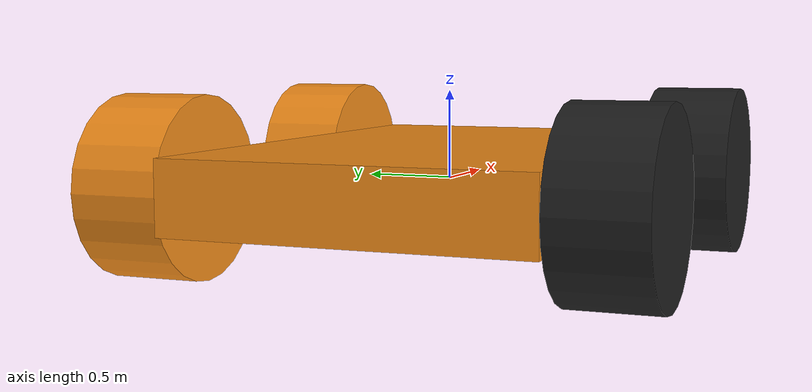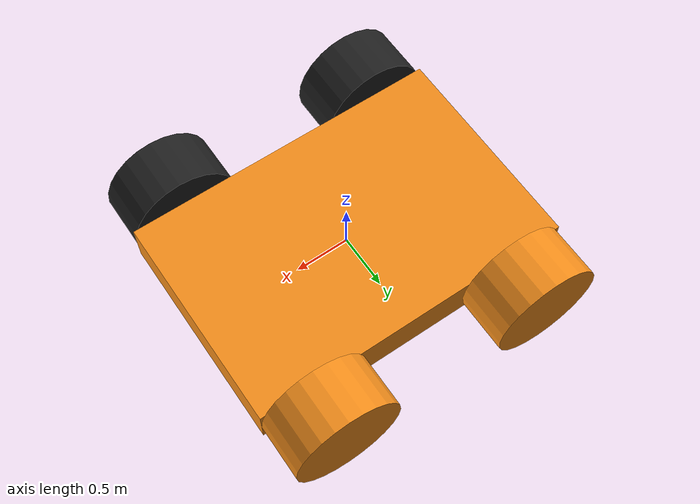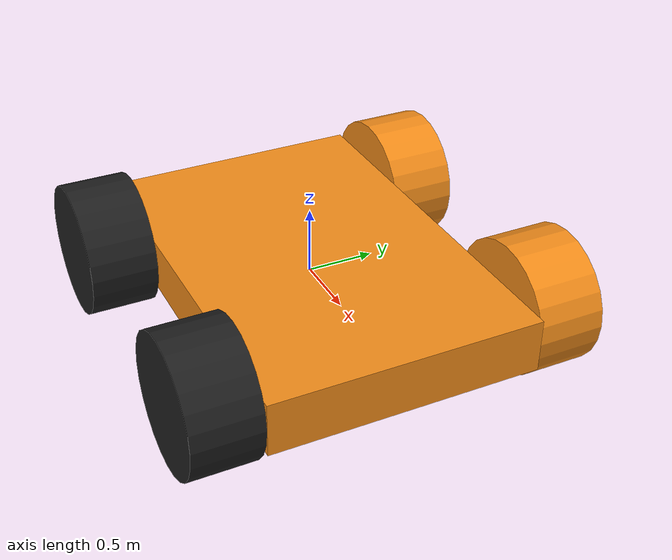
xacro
<?xml version="1.0"?>

<robot name="rover_control_test" xmlns:xacro="http://www.ros.org/wiki/xacro">

  <xacro:property name="PI" value="3.1415926535897931"/>
  <xacro:property name="base_mass" value="10" /> <!-- arbitrary value for mass -->
  <xacro:property name="base_width" value="2" />
  <xacro:property name="height" value="0.4" />
  <xacro:property name="longth" value="3" />
  <xacro:property name="wheel_diameter" value="1" />
  <xacro:property name="wheel_width" value="0.5" />
  <xacro:property name="wheel_mass" value="2" />
  <xacro:include filename="$(find rover_control_test_description)/urdf/rover_control_test.gazebo" />
  <xacro:include filename="$(find rover_control_test_description)/urdf/materials.xacro" />

  <link name="base_link">
   <collision>
     <origin xyz="0 0 0" rpy="0 0 0"/>
     <geometry>
       <box size="${longth} ${base_width} ${height}"/>
     </geometry>
   </collision>
   <visual>
     <origin xyz="0 0 0" rpy="0 0 0"/>
     <geometry>
       <box size="${longth} ${base_width} ${height}"/>
     </geometry>
   </visual>
   <inertial>
     <origin xyz="0 0 ${height/2}" rpy="0 0 0"/>
     <mass value="${base_mass}"/>
     <inertia
	        ixx="${base_mass / 12.0 * (longth*longth + height*height)}" ixy="0.0" ixz="0.0"
	        iyy="${base_mass / 12.0 * (height*height + base_width*base_width)}" iyz="0.0"
	        izz="${base_mass / 12.0 * (longth*longth + base_width*base_width)}"/>
   </inertial>
  </link>

  <link name="front_left_wheel">
   <collision>
     <origin xyz="0 0 0" rpy="${PI/2} 0 0"/>
     <geometry>
       <cylinder radius="${wheel_diameter/2}" length="${wheel_width}"/>
     </geometry>
   </collision>
   <visual>
     <origin xyz="0 0 0" rpy="${PI/2} 0 0"/>
     <geometry>
       <cylinder radius="${wheel_diameter/2}" length="${wheel_width}"/>
     </geometry>
   </visual>
   <inertial>
     <mass value="${base_mass}"/>
     <inertia
         ixx="${(1.0/12)*wheel_mass*(3*wheel_diameter/2*wheel_diameter/2+wheel_width*wheel_width)}" ixy="0.0" ixz="0.0"
         iyy="${(1.0/12)*wheel_mass*(3*wheel_diameter/2*wheel_diameter/2+wheel_width*wheel_width)}" iyz="0.0"
         izz="${(1.0/12)*wheel_mass*(wheel_diameter/2*wheel_diameter/2)}" />
   </inertial>
  </link>

  <joint name="front_left_joint" type="continuous">
    <axis xyz="0 1 0"/>
    <limit effort="100" velocity="100"/>
    <joint_properties damping="0.0" friction="0.0"/>
    <dynamics damping="0.7"/>
    <origin xyz="-1 -1.25 0" rpy="0 0 0"/>
    <parent link="base_link"/>
    <child link="front_left_wheel"/>
  </joint>

  <link name="front_right_wheel">
   <collision>
     <origin xyz="0 0 0" rpy="${PI/2} 0 0"/>
     <geometry>
       <cylinder radius="${wheel_diameter/2}" length="${wheel_width}"/>
     </geometry>
   </collision>
   <visual>
     <origin xyz="0 0 0" rpy="${PI/2} 0 0"/>
     <geometry>
       <cylinder radius="${wheel_diameter/2}" length="${wheel_width}"/>
     </geometry>
   </visual>
   <inertial>
     <mass value="${base_mass}"/>
     <inertia
         ixx="${(1.0/12)*wheel_mass*(3*wheel_diameter/2*wheel_diameter/2+wheel_width*wheel_width)}" ixy="0.0" ixz="0.0"
         iyy="${(1.0/12)*wheel_mass*(3*wheel_diameter/2*wheel_diameter/2+wheel_width*wheel_width)}" iyz="0.0"
         izz="${(1.0/12)*wheel_mass*(wheel_diameter/2*wheel_diameter/2)}" />
   </inertial>
  </link>

  <joint name="front_right_joint" type="continuous">
    <axis xyz="0 1 0"/>
    <limit effort="100" velocity="100"/>
    <joint_properties damping="0.0" friction="0.0"/>
    <dynamics damping="0.7"/>
    <origin xyz="-1 1.25 0" rpy="0 0 0"/>
    <parent link="base_link"/>
    <child link="front_right_wheel"/>
  </joint>

  <link name="rear_left_wheel">
   <collision>
     <origin xyz="0 0 0" rpy="${PI/2} 0 0"/>
     <geometry>
       <cylinder radius="${wheel_diameter/2}" length="${wheel_width}"/>
     </geometry>
   </collision>
   <visual>
     <origin xyz="0 0 0" rpy="${PI/2} 0 0"/>
     <geometry>
       <cylinder radius="${wheel_diameter/2}" length="${wheel_width}"/>
     </geometry>
   </visual>
   <inertial>
     <mass value="${base_mass}"/>
     <inertia
         ixx="${(1.0/12)*wheel_mass*(3*wheel_diameter/2*wheel_diameter/2+wheel_width*wheel_width)}" ixy="0.0" ixz="0.0"
         iyy="${(1.0/12)*wheel_mass*(3*wheel_diameter/2*wheel_diameter/2+wheel_width*wheel_width)}" iyz="0.0"
         izz="${(1.0/12)*wheel_mass*(wheel_diameter/2*wheel_diameter/2)}" />
   </inertial>
  </link>

  <joint name="rear_left_joint" type="continuous">
    <axis xyz="0 1 0"/>
    <limit effort="100" velocity="100"/>
    <joint_properties damping="0.0" friction="0.0"/>
    <dynamics damping="0.7"/>
    <origin xyz="1 -1.25 0" rpy="0 0 0"/>
    <parent link="base_link"/>
    <child link="rear_left_wheel"/>
  </joint>

  <link name="rear_right_wheel">
   <collision>
     <origin xyz="0 0 0" rpy="${PI/2} 0 0"/>
     <geometry>
       <cylinder radius="${wheel_diameter/2}" length="${wheel_width}"/>
     </geometry>
   </collision>
   <visual>
     <origin xyz="0 0 0" rpy="${PI/2} 0 0"/>
     <geometry>
       <cylinder radius="${wheel_diameter/2}" length="${wheel_width}"/>
     </geometry>
   </visual>
   <inertial>
     <mass value="${base_mass}"/>
     <inertia
         ixx="${(1.0/12)*wheel_mass*(3*wheel_diameter/2*wheel_diameter/2+wheel_width*wheel_width)}" ixy="0.0" ixz="0.0"
         iyy="${(1.0/12)*wheel_mass*(3*wheel_diameter/2*wheel_diameter/2+wheel_width*wheel_width)}" iyz="0.0"
         izz="${(1.0/12)*wheel_mass*(wheel_diameter/2*wheel_diameter/2)}" />
   </inertial>
  </link>

  <joint name="rear_right_joint" type="continuous">
    <axis xyz="0 1 0"/>
    <limit effort="100" velocity="100"/>
    <joint_properties damping="0.0" friction="0.0"/>
    <dynamics damping="0.7"/>
    <origin xyz="1 1.25 0" rpy="0 0 0"/>
    <parent link="base_link"/>
    <child link="rear_right_wheel"/>
  </joint>

  <transmission name="tran_front_left_joint">
    <type>transmission_interface/SimpleTransmission</type>
    <joint name="front_left_joint">
      <hardwareInterface>hardware_interface/EffortJointInterface</hardwareInterface>
    </joint>
    <actuator name="motor_front_left_joint">
      <hardwareInterface>hardware_interface/EffortJointInterface</hardwareInterface>
      <mechanicalReduction>1</mechanicalReduction>
    </actuator>
  </transmission>

  <transmission name="tran_front_right">
    <type>transmission_interface/SimpleTransmission</type>
    <joint name="front_right_joint">
      <hardwareInterface>hardware_interface/EffortJointInterface</hardwareInterface>
    </joint>
    <actuator name="motor_front_right">
      <hardwareInterface>hardware_interface/EffortJointInterface</hardwareInterface>
      <mechanicalReduction>1</mechanicalReduction>
    </actuator>
  </transmission>

  <transmission name="tran_rear_left_joint">
    <type>transmission_interface/SimpleTransmission</type>
    <joint name="rear_left_joint">
      <hardwareInterface>hardware_interface/EffortJointInterface</hardwareInterface>
    </joint>
    <actuator name="motor_rear_left_joint">
      <hardwareInterface>hardware_interface/EffortJointInterface</hardwareInterface>
      <mechanicalReduction>1</mechanicalReduction>
    </actuator>
  </transmission>

  <transmission name="tran_rear_right">
    <type>transmission_interface/SimpleTransmission</type>
    <joint name="rear_right_joint">
      <hardwareInterface>hardware_interface/EffortJointInterface</hardwareInterface>
    </joint>
    <actuator name="motor_rear_right">
      <hardwareInterface>hardware_interface/EffortJointInterface</hardwareInterface>
      <mechanicalReduction>1</mechanicalReduction>
    </actuator>
  </transmission>

</robot>
